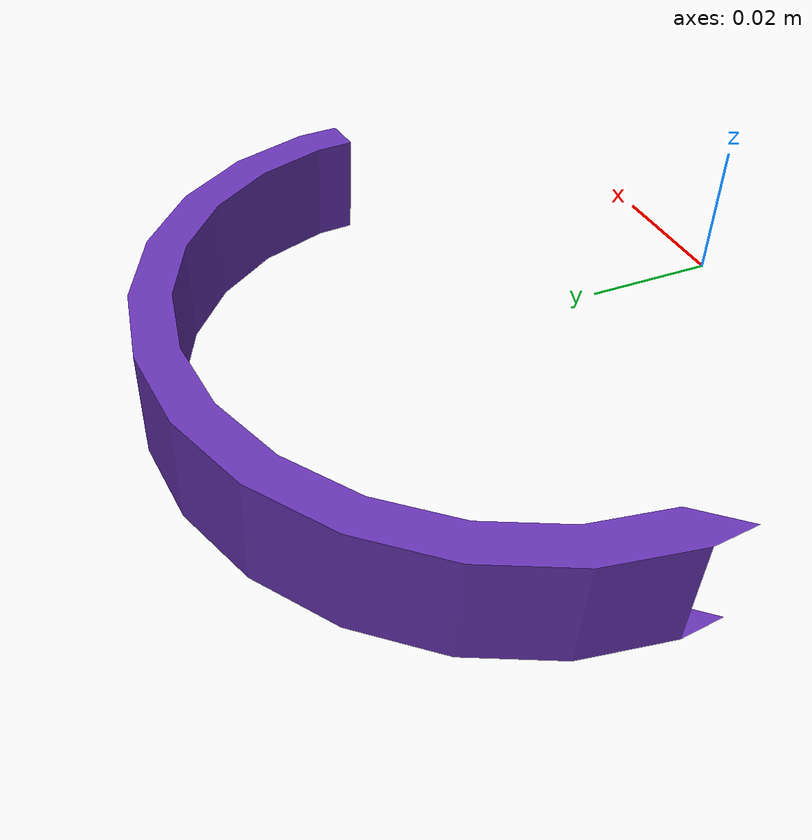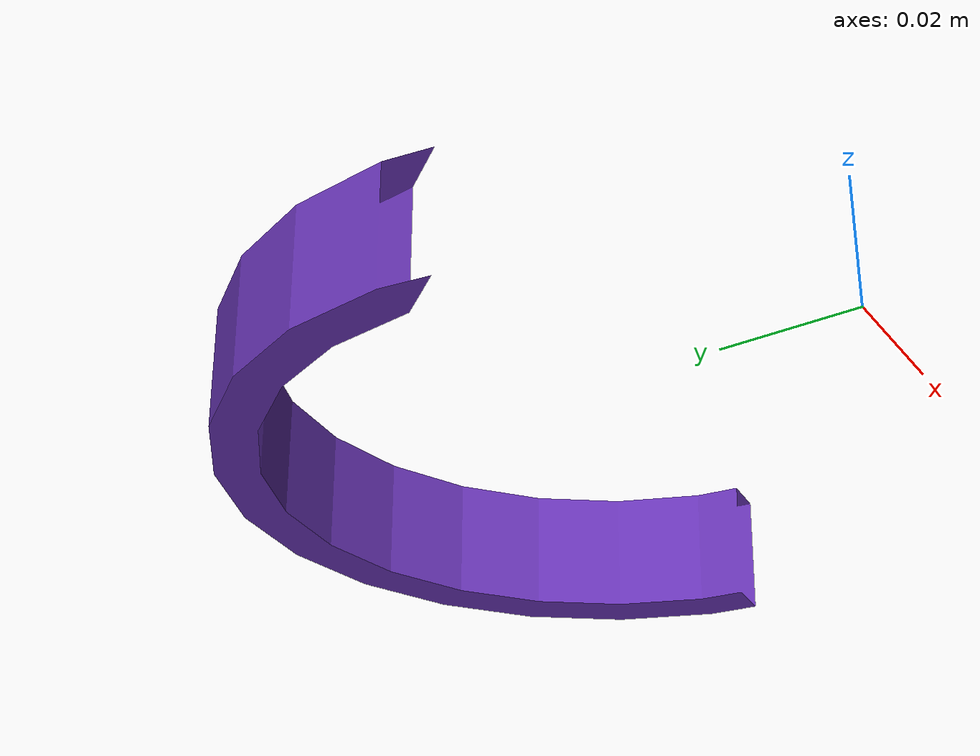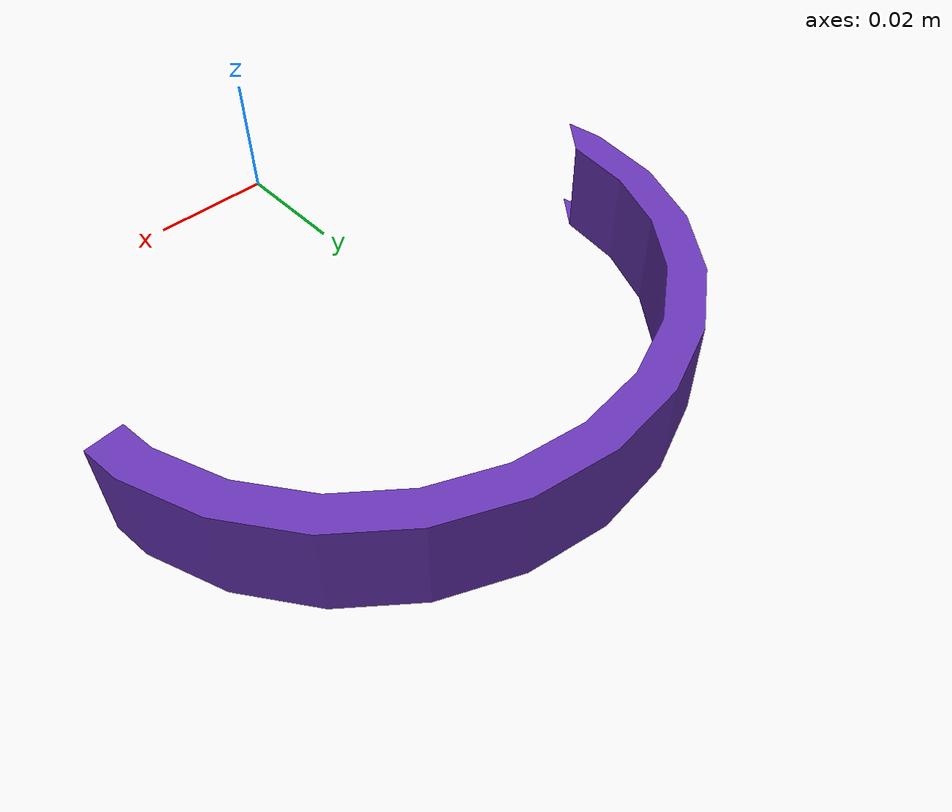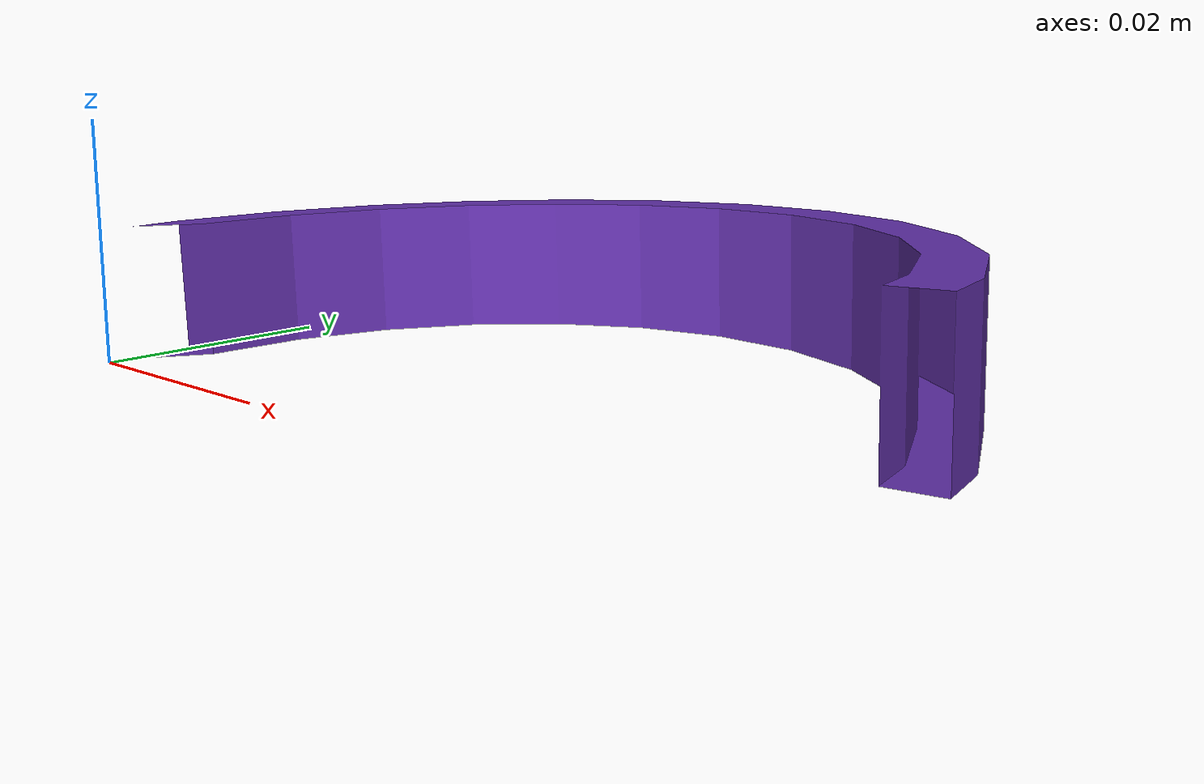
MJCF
<mujoco model="top_watertight_tiny">
  <default>
    <default group="2" type="mesh" contype="0" conaffinity="0">
      <geom group="2" type="mesh" contype="0" conaffinity="0"/>
    </default>
    <default group="3" type="mesh">
      <geom group="3" type="mesh"/>
    </default>
  </default>
  <asset>
    <mesh file="top_watertight_tiny.obj"/>
    <mesh file="top_watertight_tiny_collision_0.obj"/>
    <mesh file="top_watertight_tiny_collision_1.obj"/>
    <mesh file="top_watertight_tiny_collision_2.obj"/>
    <mesh file="top_watertight_tiny_collision_3.obj"/>
    <mesh file="top_watertight_tiny_collision_4.obj"/>
    <mesh file="top_watertight_tiny_collision_5.obj"/>
    <mesh file="top_watertight_tiny_collision_6.obj"/>
    <mesh file="top_watertight_tiny_collision_7.obj"/>
    <mesh file="top_watertight_tiny_collision_8.obj"/>
    <mesh file="top_watertight_tiny_collision_9.obj"/>
    <mesh file="top_watertight_tiny_collision_10.obj"/>
    <mesh file="top_watertight_tiny_collision_11.obj"/>
    <mesh file="top_watertight_tiny_collision_12.obj"/>
    <mesh file="top_watertight_tiny_collision_13.obj"/>
    <mesh file="top_watertight_tiny_collision_14.obj"/>
    <mesh file="top_watertight_tiny_collision_15.obj"/>
    <mesh file="top_watertight_tiny_collision_16.obj"/>
    <mesh file="top_watertight_tiny_collision_17.obj"/>
    <mesh file="top_watertight_tiny_collision_18.obj"/>
    <mesh file="top_watertight_tiny_collision_19.obj"/>
    <mesh file="top_watertight_tiny_collision_20.obj"/>
    <mesh file="top_watertight_tiny_collision_21.obj"/>
    <mesh file="top_watertight_tiny_collision_22.obj"/>
    <mesh file="top_watertight_tiny_collision_23.obj"/>
    <mesh file="top_watertight_tiny_collision_24.obj"/>
    <mesh file="top_watertight_tiny_collision_25.obj"/>
    <mesh file="top_watertight_tiny_collision_26.obj"/>
    <mesh file="top_watertight_tiny_collision_27.obj"/>
    <mesh file="top_watertight_tiny_collision_28.obj"/>
    <mesh file="top_watertight_tiny_collision_29.obj"/>
    <mesh file="top_watertight_tiny_collision_30.obj"/>
    <mesh file="top_watertight_tiny_collision_31.obj"/>
    <mesh file="top_watertight_tiny_collision_32.obj"/>
    <mesh file="top_watertight_tiny_collision_33.obj"/>
    <mesh file="top_watertight_tiny_collision_34.obj"/>
    <mesh file="top_watertight_tiny_collision_35.obj"/>
    <mesh file="top_watertight_tiny_collision_36.obj"/>
    <mesh file="top_watertight_tiny_collision_37.obj"/>
    <mesh file="top_watertight_tiny_collision_38.obj"/>
    <mesh file="top_watertight_tiny_collision_39.obj"/>
    <mesh file="top_watertight_tiny_collision_40.obj"/>
    <mesh file="top_watertight_tiny_collision_41.obj"/>
    <mesh file="top_watertight_tiny_collision_42.obj"/>
    <mesh file="top_watertight_tiny_collision_43.obj"/>
    <mesh file="top_watertight_tiny_collision_44.obj"/>
    <mesh file="top_watertight_tiny_collision_45.obj"/>
    <mesh file="top_watertight_tiny_collision_46.obj"/>
    <mesh file="top_watertight_tiny_collision_47.obj"/>
    <mesh file="top_watertight_tiny_collision_48.obj"/>
  </asset>
  <worldbody>
    <body name="top_watertight_tiny">
      <freejoint/>
      <geom mesh="top_watertight_tiny" group="2" type="mesh" rgba="0.4 0.2 0.7 1" contype="0" conaffinity="0"/>
      <geom mesh="top_watertight_tiny_collision_0" rgba="0.054766574409390034 0.8257619859867841 0.5234326569713394 1" group="3" type="mesh"/>
      <geom mesh="top_watertight_tiny_collision_1" rgba="0.7978769431043116 0.49282189153257494 0.7981049565845398 1" group="3" type="mesh"/>
      <geom mesh="top_watertight_tiny_collision_2" rgba="0.5483760204334385 0.033421610627225706 0.10788000055123403 1" group="3" type="mesh"/>
      <geom mesh="top_watertight_tiny_collision_3" rgba="0.6610493731896853 0.26912904520543246 0.7993828149276015 1" group="3" type="mesh"/>
      <geom mesh="top_watertight_tiny_collision_4" rgba="0.41500374323461386 0.04771593684570952 0.29880750252037314 1" group="3" type="mesh"/>
      <geom mesh="top_watertight_tiny_collision_5" rgba="0.6511042234329314 0.623183959921033 0.8190681784601539 1" group="3" type="mesh"/>
      <geom mesh="top_watertight_tiny_collision_6" rgba="0.7758049502082145 0.6837393850547318 0.8547439775753102 1" group="3" type="mesh"/>
      <geom mesh="top_watertight_tiny_collision_7" rgba="0.14871852054253398 0.5525202557711464 0.09366229889952016 1" group="3" type="mesh"/>
      <geom mesh="top_watertight_tiny_collision_8" rgba="0.14754766916585293 0.3219304931507868 0.5908382398647947 1" group="3" type="mesh"/>
      <geom mesh="top_watertight_tiny_collision_9" rgba="0.1797073374006296 0.10595675739617005 0.7653879463592228 1" group="3" type="mesh"/>
      <geom mesh="top_watertight_tiny_collision_10" rgba="0.11788538395340298 0.06767147026051523 0.14754316310340265 1" group="3" type="mesh"/>
      <geom mesh="top_watertight_tiny_collision_11" rgba="0.33838310611199196 0.4552984442786061 0.5609345152001594 1" group="3" type="mesh"/>
      <geom mesh="top_watertight_tiny_collision_12" rgba="0.9585916384132817 0.3609305994511922 0.18433348999372 1" group="3" type="mesh"/>
      <geom mesh="top_watertight_tiny_collision_13" rgba="0.5576520100576005 0.7031335425189431 0.740604036037952 1" group="3" type="mesh"/>
      <geom mesh="top_watertight_tiny_collision_14" rgba="0.23380412248599736 0.5306320062050417 0.12881265691096055 1" group="3" type="mesh"/>
      <geom mesh="top_watertight_tiny_collision_15" rgba="0.5468047717012718 0.08708672554000108 0.25306766199581154 1" group="3" type="mesh"/>
      <geom mesh="top_watertight_tiny_collision_16" rgba="0.5491300555036623 0.6527190855319797 0.37963797334792915 1" group="3" type="mesh"/>
      <geom mesh="top_watertight_tiny_collision_17" rgba="0.7677234626715027 0.7304611380484628 0.3271499260068902 1" group="3" type="mesh"/>
      <geom mesh="top_watertight_tiny_collision_18" rgba="0.4503029812727778 0.7604409343890279 0.41938507601764763 1" group="3" type="mesh"/>
      <geom mesh="top_watertight_tiny_collision_19" rgba="0.28049380166474347 0.3873249898427341 0.923140864763082 1" group="3" type="mesh"/>
      <geom mesh="top_watertight_tiny_collision_20" rgba="0.5623394290126402 0.4546469842979973 0.17293232511643797 1" group="3" type="mesh"/>
      <geom mesh="top_watertight_tiny_collision_21" rgba="0.8286284342250301 0.6182275033823259 0.4543263116620875 1" group="3" type="mesh"/>
      <geom mesh="top_watertight_tiny_collision_22" rgba="0.5892584276974225 0.19985754960617752 0.8413173148658565 1" group="3" type="mesh"/>
      <geom mesh="top_watertight_tiny_collision_23" rgba="0.05486193318001398 0.7435129012244571 0.8422754919208074 1" group="3" type="mesh"/>
      <geom mesh="top_watertight_tiny_collision_24" rgba="0.669550070729594 0.7228584932278661 0.3284181045097494 1" group="3" type="mesh"/>
      <geom mesh="top_watertight_tiny_collision_25" rgba="0.20798412784756837 0.41411066328777246 0.6259495567916469 1" group="3" type="mesh"/>
      <geom mesh="top_watertight_tiny_collision_26" rgba="0.4663647216197224 0.14338082401105323 0.9057203173151067 1" group="3" type="mesh"/>
      <geom mesh="top_watertight_tiny_collision_27" rgba="0.2804452664236955 0.780701018373259 0.9950050771856404 1" group="3" type="mesh"/>
      <geom mesh="top_watertight_tiny_collision_28" rgba="0.9411776949249658 0.5070683743964342 0.307292056069115 1" group="3" type="mesh"/>
      <geom mesh="top_watertight_tiny_collision_29" rgba="0.03802084657765337 0.2921487776439329 0.11154980401103609 1" group="3" type="mesh"/>
      <geom mesh="top_watertight_tiny_collision_30" rgba="0.2571192946027683 0.6420962064801935 0.21568170356695315 1" group="3" type="mesh"/>
      <geom mesh="top_watertight_tiny_collision_31" rgba="0.5413519303750494 0.7546566535049081 0.2420988527997604 1" group="3" type="mesh"/>
      <geom mesh="top_watertight_tiny_collision_32" rgba="0.5908259530017747 0.3314752746613826 0.8425418262340508 1" group="3" type="mesh"/>
      <geom mesh="top_watertight_tiny_collision_33" rgba="0.6762617927528107 0.930611152456162 0.3461668792379706 1" group="3" type="mesh"/>
      <geom mesh="top_watertight_tiny_collision_34" rgba="0.8812970270589525 0.4037957883597235 0.8553874653617136 1" group="3" type="mesh"/>
      <geom mesh="top_watertight_tiny_collision_35" rgba="0.36912888928042675 0.4251878725227828 0.40444383906355996 1" group="3" type="mesh"/>
      <geom mesh="top_watertight_tiny_collision_36" rgba="0.15604037312399588 0.0787973412876588 0.5975490258511297 1" group="3" type="mesh"/>
      <geom mesh="top_watertight_tiny_collision_37" rgba="0.12764292383803388 0.5254256655203879 0.17252788996726143 1" group="3" type="mesh"/>
      <geom mesh="top_watertight_tiny_collision_38" rgba="0.4633717223539159 0.4334789290632529 0.9822731510356043 1" group="3" type="mesh"/>
      <geom mesh="top_watertight_tiny_collision_39" rgba="0.6395733890238732 0.9646504749633156 0.771997697302216 1" group="3" type="mesh"/>
      <geom mesh="top_watertight_tiny_collision_40" rgba="0.8607552614530602 0.43830241057666486 0.39872297777397203 1" group="3" type="mesh"/>
      <geom mesh="top_watertight_tiny_collision_41" rgba="0.1723773047827606 0.19592694314138226 0.6453344920793619 1" group="3" type="mesh"/>
      <geom mesh="top_watertight_tiny_collision_42" rgba="0.6473429029090425 0.16704357107014123 0.7658071486849389 1" group="3" type="mesh"/>
      <geom mesh="top_watertight_tiny_collision_43" rgba="0.716802580913184 0.04315659707036312 0.033241066932502394 1" group="3" type="mesh"/>
      <geom mesh="top_watertight_tiny_collision_44" rgba="0.673023396624791 0.17330916854073408 0.7689490055662221 1" group="3" type="mesh"/>
      <geom mesh="top_watertight_tiny_collision_45" rgba="0.5982475624635203 0.9466662587102092 0.7954086306227927 1" group="3" type="mesh"/>
      <geom mesh="top_watertight_tiny_collision_46" rgba="0.9722848470640117 0.025905716488464625 0.9787787884326711 1" group="3" type="mesh"/>
      <geom mesh="top_watertight_tiny_collision_47" rgba="0.22909829023532724 0.10800953480732423 0.3274292580093425 1" group="3" type="mesh"/>
      <geom mesh="top_watertight_tiny_collision_48" rgba="0.5919222923530667 0.17181664271053732 0.4585360725730083 1" group="3" type="mesh"/>
    </body>
  </worldbody>
</mujoco>
